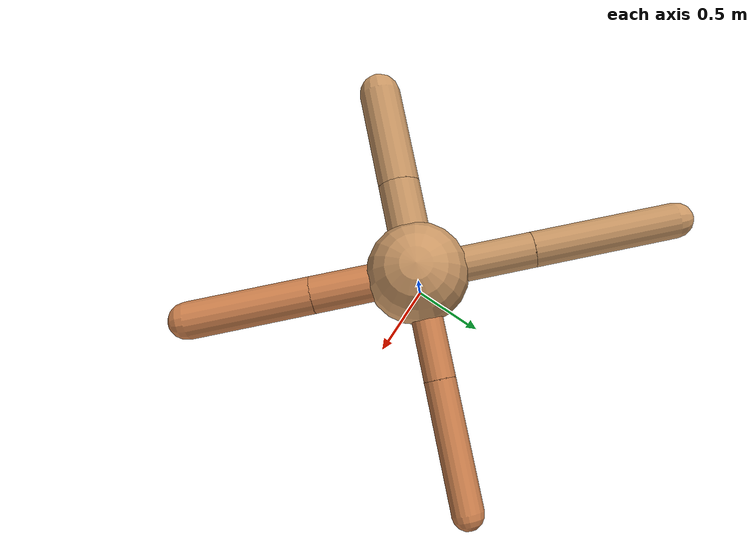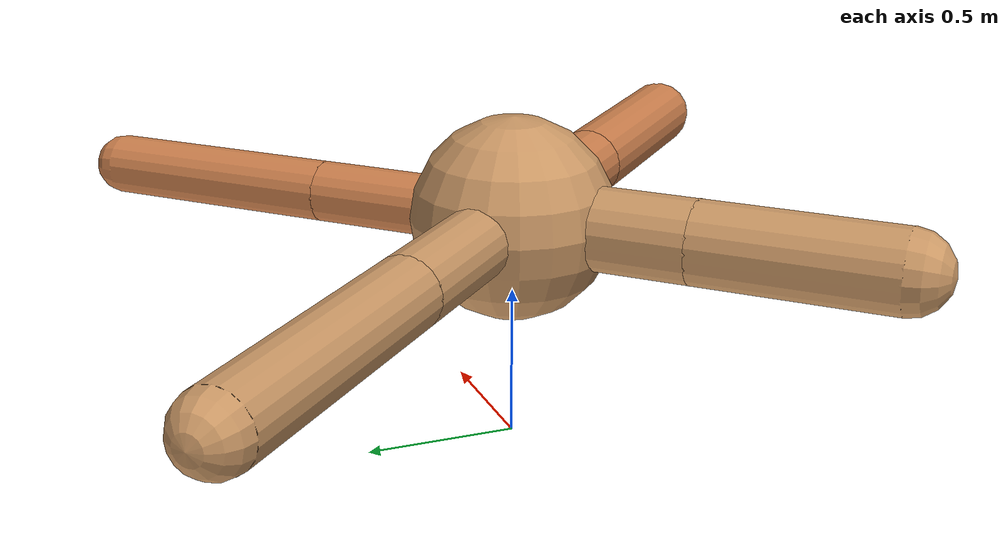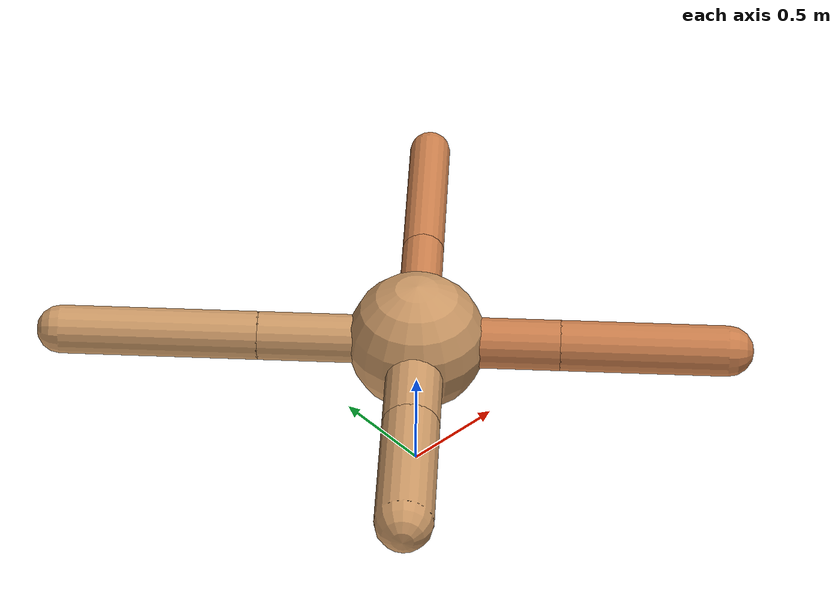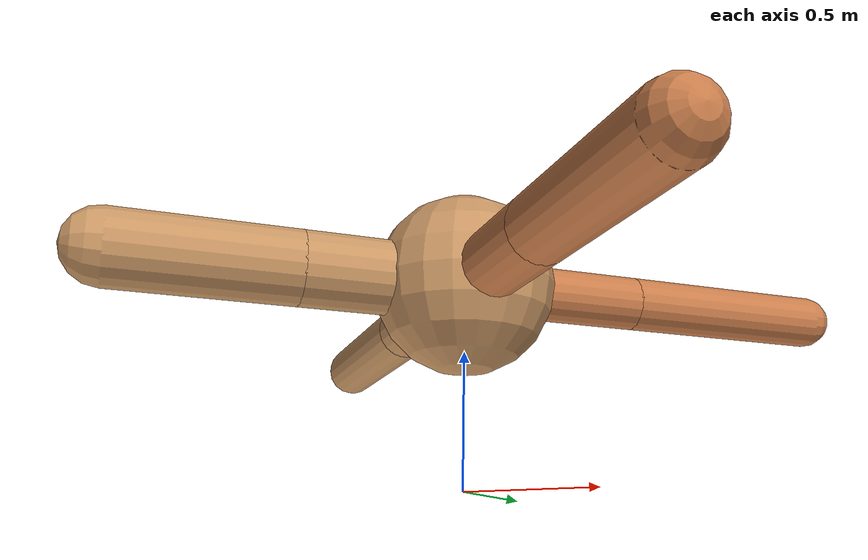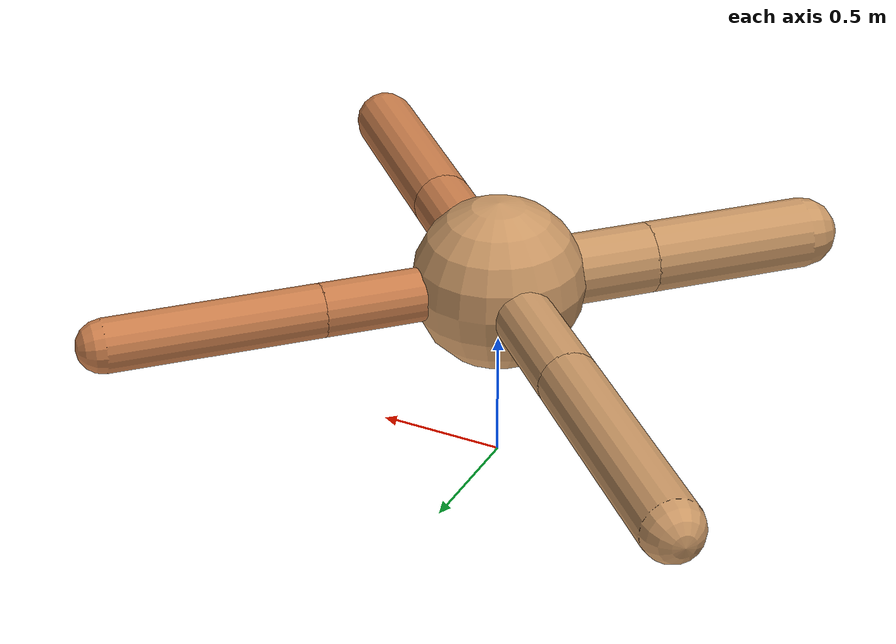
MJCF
<?xml version="1.0" ?>
<mujoco model="ant">

	<compiler angle="degree" coordinate="local" inertiafromgeom="true"/>

	<option integrator="RK4" timestep="0.01"/>

	<custom>

		<numeric data="0.0 0.0 0.55 1.0 0.0 0.0 0.0 0.0 1.0 0.0 -1.0 0.0 -1.0 0.0 1.0" name="init_qpos"/>

	</custom>

	<default>

		<joint armature="1" damping="1" limited="true"/>

		<geom conaffinity="0" condim="3" density="5.0" friction="1.5 0.1 0.1" margin="0.01" rgba="0.8 0.6 0.4 1"/>

	</default>

	<worldbody>

		<body name="torso" pos="0 0 0.75">

			<geom name="torso_geom" pos="0 0 0" size="0.33120763450460666" type="sphere"/>

			<!--joint armature="0" damping="0" limited="false" margin="0.01" name="root" pos="0 0 0" type="free"/-->

			<body name="front_left_leg" pos="0 0 0">

				<geom fromto="0 0 0 0.2 0.2 0" name="aux_1_geom" size="0.10191191085710152" type="capsule" rgba=".8 .5 .3 1"/>

				<body name="aux_1" pos="0.2 0.2 0">

					<joint axis="0 0 1" name="hip_1" pos="0.0 0.0 0.0" range="-40 40" type="hinge"/>

					<geom fromto="0 0 0 0.2879475985002785 0.2879475985002785 0" name="left_leg_geom" size="0.10191191085710152" type="capsule" rgba=".8 .5 .3 1"/>

					<body pos="0.2879475985002785 0.2879475985002785 0" name="front_left_foot">

						<joint axis="-1 1 0" name="ankle_1" pos="0.0 0.0 0.0" range="30 100" type="hinge"/>

						<geom fromto="0 0 0 0.575895197000557 0.575895197000557 0" name="left_ankle_geom" size="0.10191191085710152" type="capsule" rgba=".8 .5 .3 1"/>

					</body>

				</body>

			</body>

			<body name="front_right_leg" pos="0 0 0">

				<geom fromto="0 0 0 -0.2 0.2 0" name="aux_2_geom" size="0.11557510324686288" type="capsule"/>

				<body name="aux_2" pos="-0.2 0.2 0">

					<joint axis="0 0 1" name="hip_2" pos="0.0 0.0 0.0" range="-40 40" type="hinge"/>

					<geom fromto="0 0 0 -0.33457754428425285 0.33457754428425285 0" name="right_leg_geom" size="0.11557510324686288" type="capsule"/>

					<body pos="-0.33457754428425285 0.33457754428425285 0" name="front_right_foot">

						<joint axis="1 1 0" name="ankle_2" pos="0.0 0.0 0.0" range="-100 -30" type="hinge"/>

						<geom fromto="0 0 0 -0.6691550885685057 0.6691550885685057 0" name="right_ankle_geom" size="0.11557510324686288" type="capsule"/>

					</body>

				</body>

			</body>

			<body name="left_back_leg" pos="0 0 0">

				<geom fromto="0 0 0 -0.2 -0.2 0" name="aux_3_geom" size="0.13599859459495517" type="capsule"/>

				<body name="aux_3" pos="-0.2 -0.2 0">

					<joint axis="0 0 1" name="hip_3" pos="0.0 0.0 0.0" range="-40 40" type="hinge"/>

					<geom fromto="0 0 0 -0.2272265619914197 -0.2272265619914197 0" name="back_leg_geom" size="0.13599859459495517" type="capsule"/>

					<body pos="-0.2272265619914197 -0.2272265619914197 0" name="left_back_foot">

						<joint axis="-1 1 0" name="ankle_3" pos="0.0 0.0 0.0" range="-100 -30" type="hinge"/>

						<geom fromto="0 0 0 -0.4544531239828394 -0.4544531239828394 0" name="third_ankle_geom" size="0.13599859459495517" type="capsule"/>

					</body>

				</body>

			</body>

			<body name="right_back_leg" pos="0 0 0">

				<geom fromto="0 0 0 0.2 -0.2 0" name="aux_4_geom" size="0.12086441473407136" type="capsule" rgba=".8 .5 .3 1"/>

				<body name="aux_4" pos="0.2 -0.2 0">

					<joint axis="0 0 1" name="hip_4" pos="0.0 0.0 0.0" range="-40 40" type="hinge"/>

					<geom fromto="0 0 0 0.2818193094628258 -0.2818193094628258 0" name="rightback_leg_geom" size="0.12086441473407136" type="capsule" rgba=".8 .5 .3 1"/>

					<body pos="0.2818193094628258 -0.2818193094628258 0" name="right_back_foot">

						<joint axis="1 1 0" name="ankle_4" pos="0.0 0.0 0.0" range="30 100" type="hinge"/>

						<geom fromto="0 0 0 0.5636386189256516 -0.5636386189256516 0" name="fourth_ankle_geom" size="0.12086441473407136" type="capsule" rgba=".8 .5 .3 1"/>

					</body>

				</body>

			</body>

		</body>

	</worldbody>

	<actuator>

		<motor ctrllimited="true" ctrlrange="-1.0 1.0" joint="hip_4" gear="150"/>

		<motor ctrllimited="true" ctrlrange="-1.0 1.0" joint="ankle_4" gear="150"/>

		<motor ctrllimited="true" ctrlrange="-1.0 1.0" joint="hip_1" gear="150"/>

		<motor ctrllimited="true" ctrlrange="-1.0 1.0" joint="ankle_1" gear="150"/>

		<motor ctrllimited="true" ctrlrange="-1.0 1.0" joint="hip_2" gear="150"/>

		<motor ctrllimited="true" ctrlrange="-1.0 1.0" joint="ankle_2" gear="150"/>

		<motor ctrllimited="true" ctrlrange="-1.0 1.0" joint="hip_3" gear="150"/>

		<motor ctrllimited="true" ctrlrange="-1.0 1.0" joint="ankle_3" gear="150"/>

	</actuator>

</mujoco>
